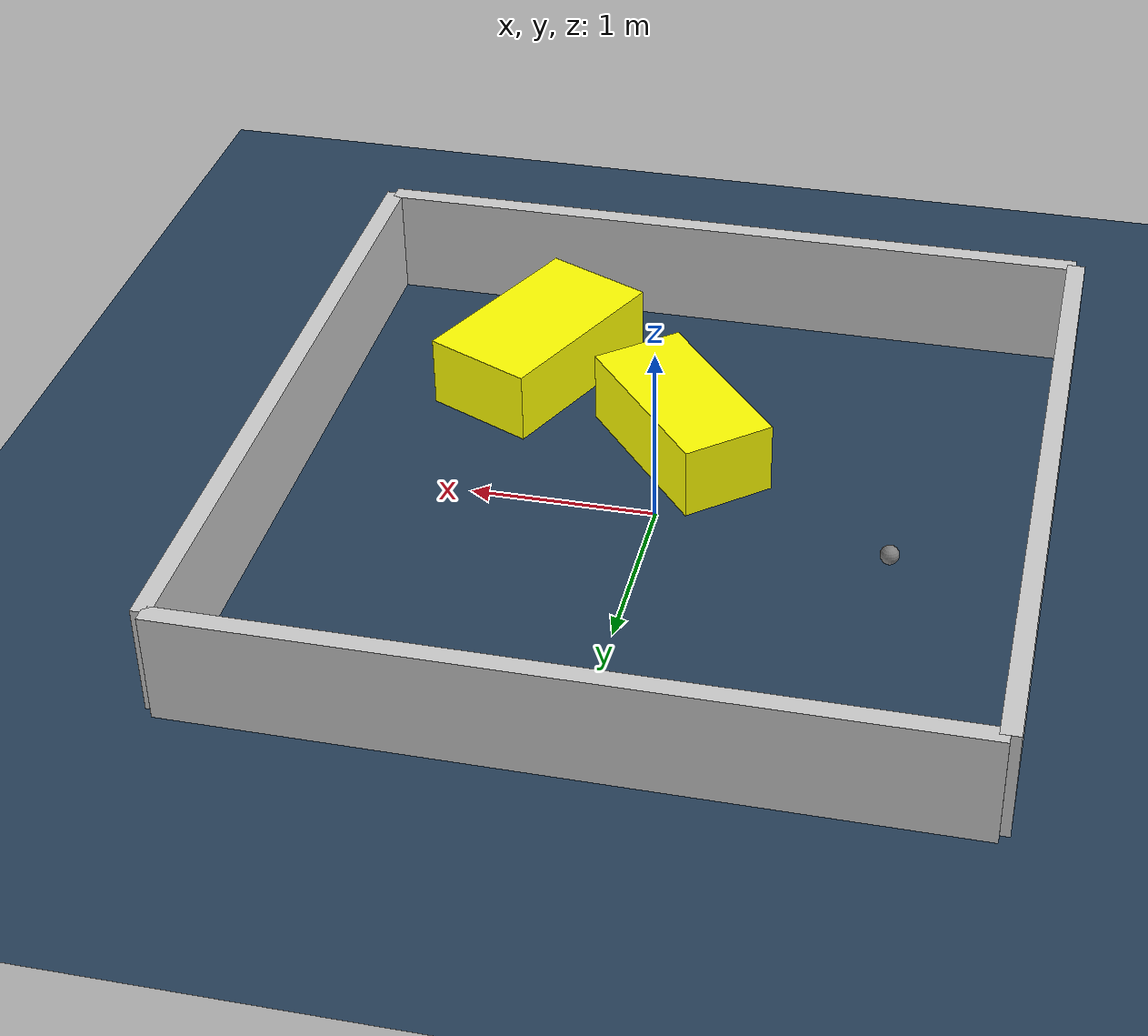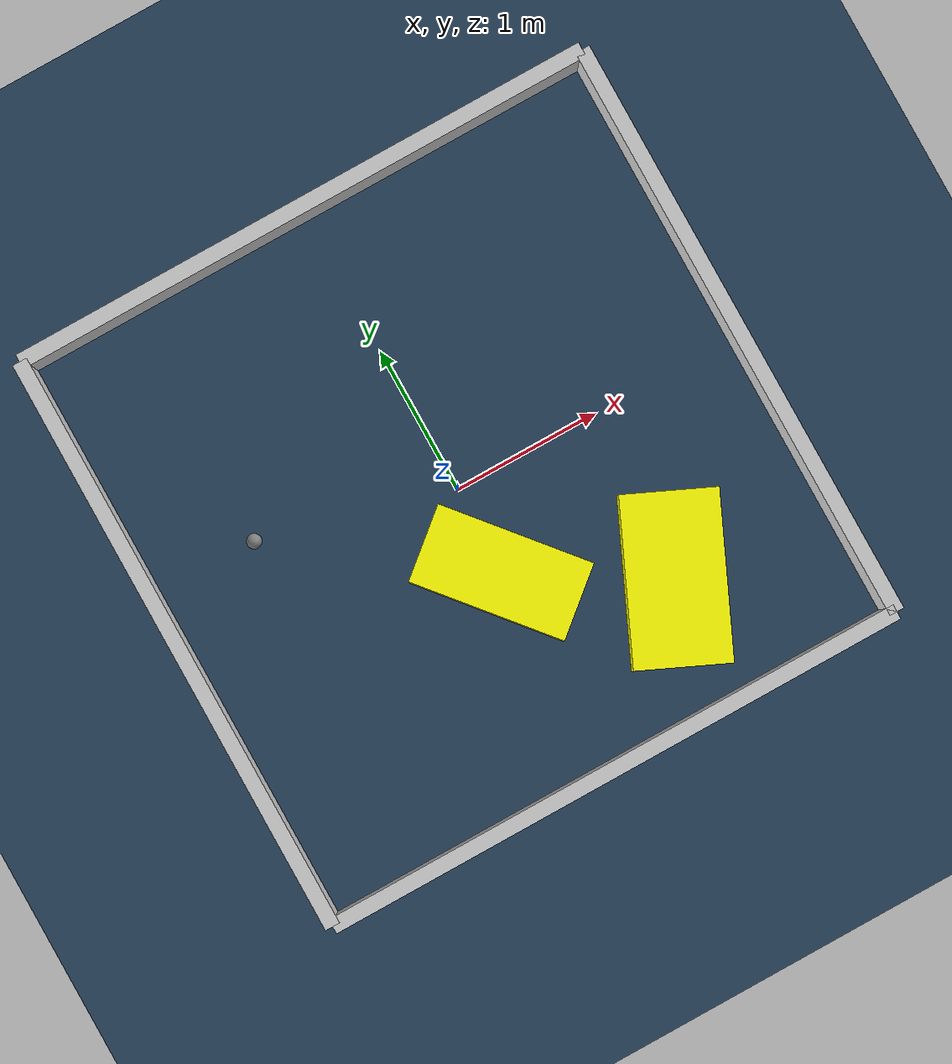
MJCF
<?xml version="1.0" ?>
<mujoco model="generated_environment">
  <option timestep="0.01" integrator="RK4" cone="elliptic"/>
  <default>
    <geom density="1"/>
  </default>
  <asset>
    <texture builtin="gradient" height="3072" rgb1="0.3 0.5 0.7" rgb2="0 0 0" type="skybox" width="512"/>
    <texture builtin="checker" height="300" mark="edge" markrgb="0.8 0.8 0.8" name="groundplane" rgb1="0.2 0.3 0.4" rgb2="0.1 0.2 0.3" type="2d" width="300"/>
    <material name="groundplane" reflectance="0.2" texrepeat="5 5" texture="groundplane" texuniform="true"/>
    <material name="robot" rgba="0.0 1.0 0.0 1"/>
  </asset>
  <worldbody>
    <light dir="0 0 -1" directional="true" pos="0 0 1.5"/>
    <geom condim="4" friction="1.0 0.005 0.001" material="groundplane" name="floor" size="0 0 0.05" type="plane"/>
    <body name="walls">
      <geom name="wall_1" condim="4" pos="-2.0 0.0 0.3" rgba="0.800000011920929 0.800000011920929 0.800000011920929 1.0" size="0.05 2.0 0.3" type="box"/>
      <geom name="wall_2" condim="4" pos="2.0 0.0 0.3" rgba="0.800000011920929 0.800000011920929 0.800000011920929 1.0" size="0.05 2.0 0.3" type="box"/>
      <geom name="wall_3" condim="4" pos="0.0 -2.0 0.3" rgba="0.800000011920929 0.800000011920929 0.800000011920929 1.0" size="2.0 0.05 0.3" type="box"/>
      <geom name="wall_4" condim="4" pos="0.0 2.0 0.3" rgba="0.800000011920929 0.800000011920929 0.800000011920929 1.0" size="2.0 0.05 0.3" type="box"/>
    </body>
    <body name="robot">
      <joint name="joint_x" type="slide" pos="0 0 0" axis="1 0 0"/>
      <joint name="joint_y" type="slide" pos="0 0 0" axis="0 1 0"/>
      <geom name="robot" type="sphere" pos="-1.275571037098889 0.33605025546598366 0.2" size="0.05" mass="5." friction="1.0 0.005 0.0001" condim="4"/>
      <site name="sensor_ball"/>
    </body>
    <body name="obstacle_1_movable">
      <geom name="obstacle_1_movable" condim="4" pos="-0.019081347749742683 -0.5919396381622678 0.2" euler="0 0 40.11425711038139" friction="1.0 0.005 0.001" rgba="1 1 0 1" size="0.26027458470354853 0.5206262934840575 0.2" type="box" mass="0.1"/>
      <joint type="free"/>
    </body>
    <body name="obstacle_2_movable">
      <geom name="obstacle_2_movable" condim="4" pos="0.9150065202236244 -1.15759604762359 0.2" euler="0 0 245.648452513532" friction="1.0 0.005 0.001" rgba="1 1 0 1" size="0.5518810558502201 0.3160910417696879 0.2" type="box" mass="0.1"/>
      <joint type="free"/>
    </body>
  </worldbody>
  <actuator>
    <motor name="actuator_x" joint="joint_x" gear="1" ctrlrange="-1 1"/>
    <motor name="actuator_y" joint="joint_y" gear="1" ctrlrange="-1 1"/>
  </actuator>
</mujoco>
